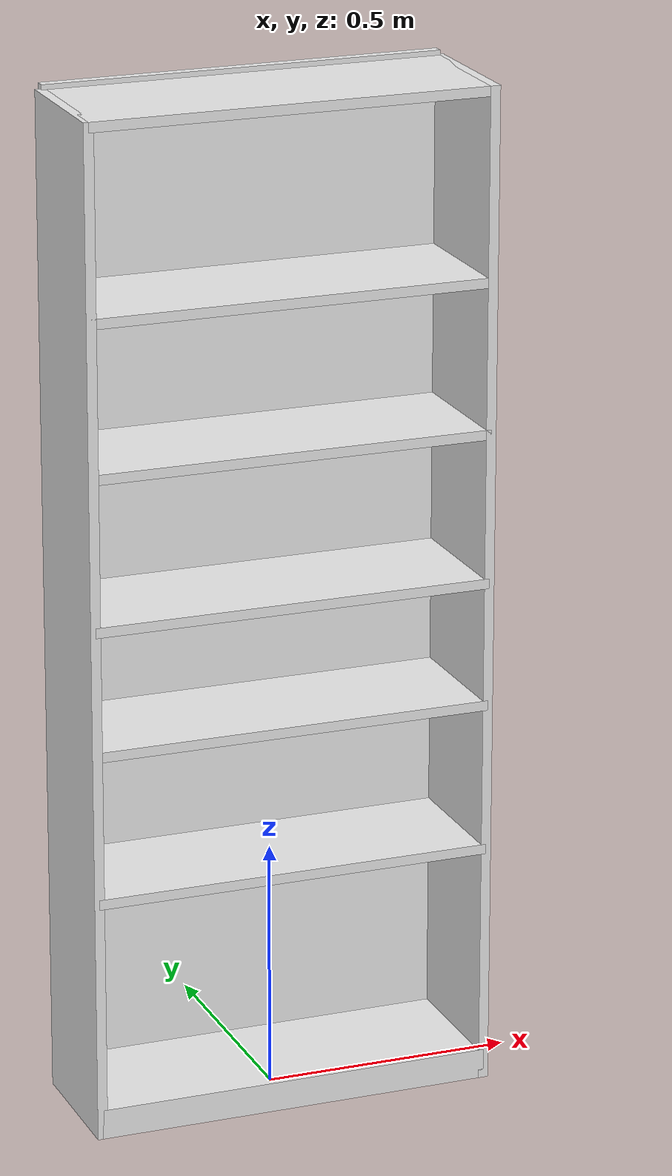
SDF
<?xml version="1.0" ?>
<sdf version="1.5">
  <model name="wrc_bookshelf">
    <static>true</static>
    <link name="link">
      <inertial>
        <mass>0.0</mass>
        <inertia>
          <ixx>1</ixx>
          <ixy>0.0</ixy>
          <ixz>0.0</ixz>
          <iyy>1</iyy>
          <iyz>0.0</iyz>
          <izz>1</izz>
        </inertia>
      </inertial>
      <collision name="back">
        <pose>0 0.14 1.02 0 0 0</pose>
        <geometry>
          <box>
            <size>0.8 0.02 2.02</size>
          </box>
        </geometry>
      </collision>
      <visual name="back_v">
        <pose>0 0.14 1.02 0 0 0</pose>
        <geometry>
          <box>
            <size>0.8 0.02 2.02</size>
          </box>
        </geometry>
        <material>
          <script>
            <uri>file://media/materials/scripts/gazebo.material</uri>
            <name>Gazebo/White</name>
          </script>
        </material>
      </visual>
      <collision name="left_side">
        <pose>0.4 0 1.01 0 0 0</pose>
        <geometry>
          <box>
            <size>0.02 0.28 2.02</size>
          </box>
        </geometry>
      </collision>
      <visual name="left_side_v">
        <pose>0.4 0 1.01 0 0 0</pose>
        <geometry>
          <box>
            <size>0.02 0.28 2.02</size>
          </box>
        </geometry>
        <material>
          <script>
            <uri>file://media/materials/scripts/gazebo.material</uri>
            <name>Gazebo/White</name>
          </script>
        </material>
      </visual>
      <collision name="right_side">
        <pose>-0.4 0 1.01 0 0 0</pose>
        <geometry>
          <box>
            <size>0.02 0.28 2.02</size>
          </box>
        </geometry>
      </collision>
      <visual name="right_side_v">
        <pose>-0.4 0 1.01 0 0 0</pose>
        <geometry>
          <box>
            <size>0.02 0.28 2.02</size>
          </box>
        </geometry>
        <material>
          <script>
            <uri>file://media/materials/scripts/gazebo.material</uri>
            <name>Gazebo/White</name>
          </script>
        </material>
      </visual>
      <collision name="bottom">
        <pose>0 0 0.03 0 0 0</pose>
        <geometry>
          <box>
            <size>0.8 0.28 0.06</size>
          </box>
        </geometry>
      </collision>
      <visual name="bottom_v">
        <pose>0 0 0.03 0 0 0</pose>
        <geometry>
          <box>
            <size>0.8 0.28 0.06</size>
          </box>
        </geometry>
        <material>
          <script>
            <uri>file://media/materials/scripts/gazebo.material</uri>
            <name>Gazebo/White</name>
          </script>
        </material>
      </visual>
      <collision name="top">
        <pose>0 0 2.01 0 0 0</pose>
        <geometry>
          <box>
            <size>0.8 0.28 0.02</size>
          </box>
        </geometry>
      </collision>
      <visual name="top_v">
        <pose>0 0 2.01 0 0 0</pose>
        <geometry>
          <box>
            <size>0.8 0.28 0.02</size>
          </box>
        </geometry>
        <material>
          <script>
            <uri>file://media/materials/scripts/gazebo.material</uri>
            <name>Gazebo/White</name>
          </script>
        </material>
      </visual>
      <collision name="slit1">
        <pose>0 0 0.49 0 0 0</pose>
        <geometry>
          <box>
            <size>0.8 0.28 0.02</size>
          </box>
        </geometry>
      </collision>
      <visual name="slit1_v">
        <pose>0 0 0.49 0 0 0</pose>
        <geometry>
          <box>
            <size>0.8 0.28 0.02</size>
          </box>
        </geometry>
        <material>
          <script>
            <uri>file://media/materials/scripts/gazebo.material</uri>
            <name>Gazebo/White</name>
          </script>
        </material>
      </visual>
      <collision name="slit2">
        <pose>0 0 0.79 0 0 0</pose>
        <geometry>
          <box>
            <size>0.8 0.28 0.02</size>
          </box>
        </geometry>
      </collision>
      <visual name="slit2_v">
        <pose>0 0 0.79 0 0 0</pose>
        <geometry>
          <box>
            <size>0.8 0.28 0.02</size>
          </box>
        </geometry>
        <material>
          <script>
            <uri>file://media/materials/scripts/gazebo.material</uri>
            <name>Gazebo/White</name>
          </script>
        </material>
      </visual>
      <collision name="slit3">
        <pose>0 0 1.04 0 0 0</pose>
        <geometry>
          <box>
            <size>0.8 0.28 0.02</size>
          </box>
        </geometry>
      </collision>
      <visual name="slit3_v">
        <pose>0 0 1.04 0 0 0</pose>
        <geometry>
          <box>
            <size>0.8 0.28 0.02</size>
          </box>
        </geometry>
        <material>
          <script>
            <uri>file://media/materials/scripts/gazebo.material</uri>
            <name>Gazebo/White</name>
          </script>
        </material>
      </visual>

      <collision name="slit4">
        <pose>0 0 1.34 0 0 0</pose>
        <geometry>
          <box>
            <size>0.8 0.28 0.02</size>
          </box>
        </geometry>
      </collision>
      <visual name="slit4_v">
        <pose>0 0 1.34 0 0 0</pose>
        <geometry>
          <box>
            <size>0.8 0.28 0.02</size>
          </box>
        </geometry>
        <material>
          <script>
            <uri>file://media/materials/scripts/gazebo.material</uri>
            <name>Gazebo/White</name>
          </script>
        </material>
      </visual>

      <collision name="slit5">
        <pose>0 0 1.64 0 0 0</pose>
        <geometry>
          <box>
            <size>0.8 0.28 0.02</size>
          </box>
        </geometry>
      </collision>
      <visual name="slit5_v">
        <pose>0 0 1.64 0 0 0</pose>
        <geometry>
          <box>
            <size>0.8 0.28 0.02</size>
          </box>
        </geometry>
        <material>
          <script>
            <uri>file://media/materials/scripts/gazebo.material</uri>
            <name>Gazebo/White</name>
          </script>
        </material>
      </visual>

    </link>
  </model>
</sdf>
